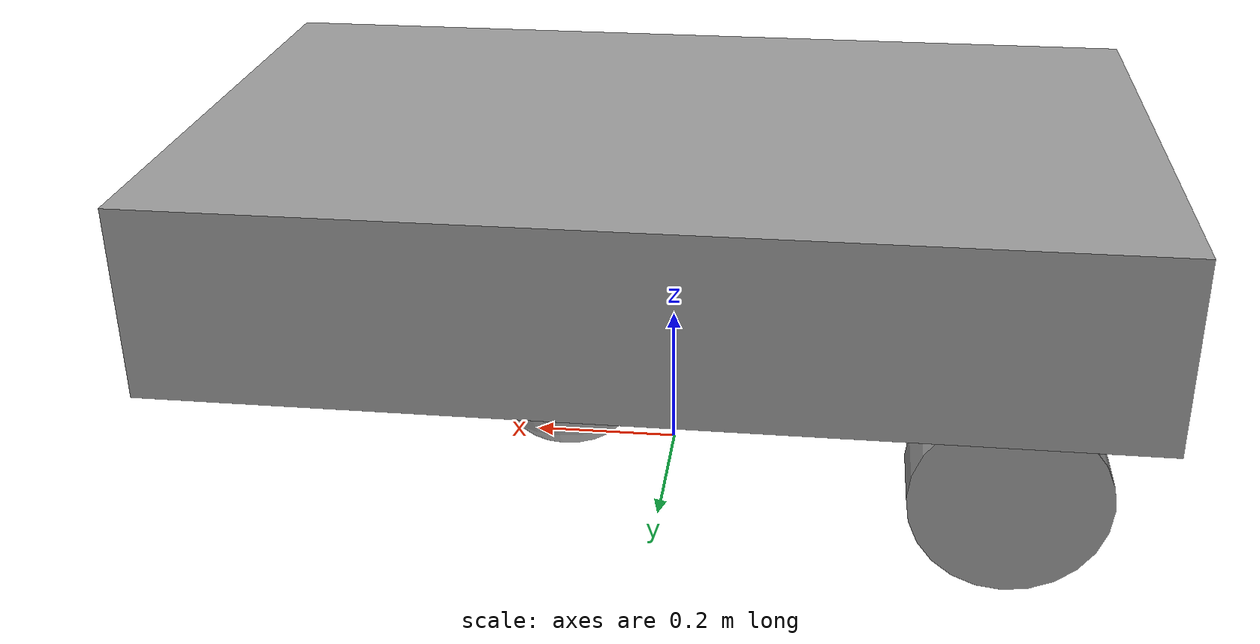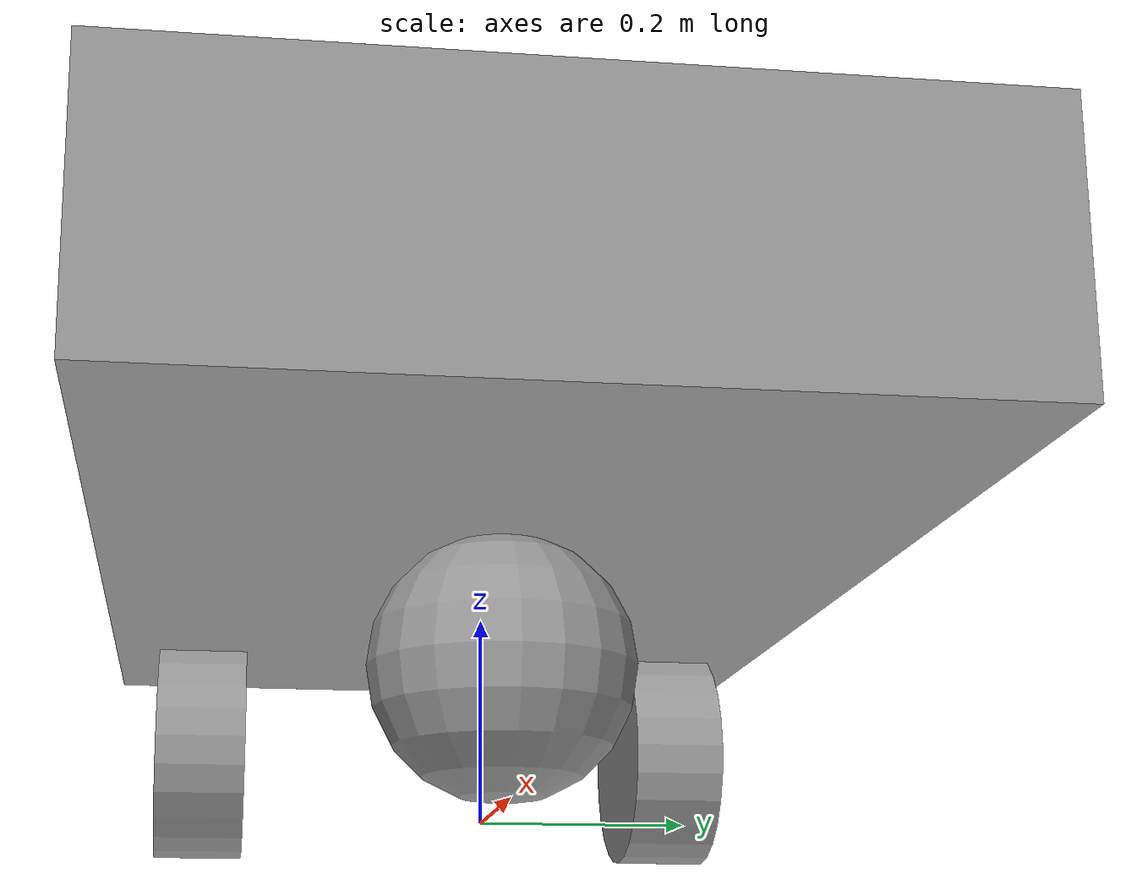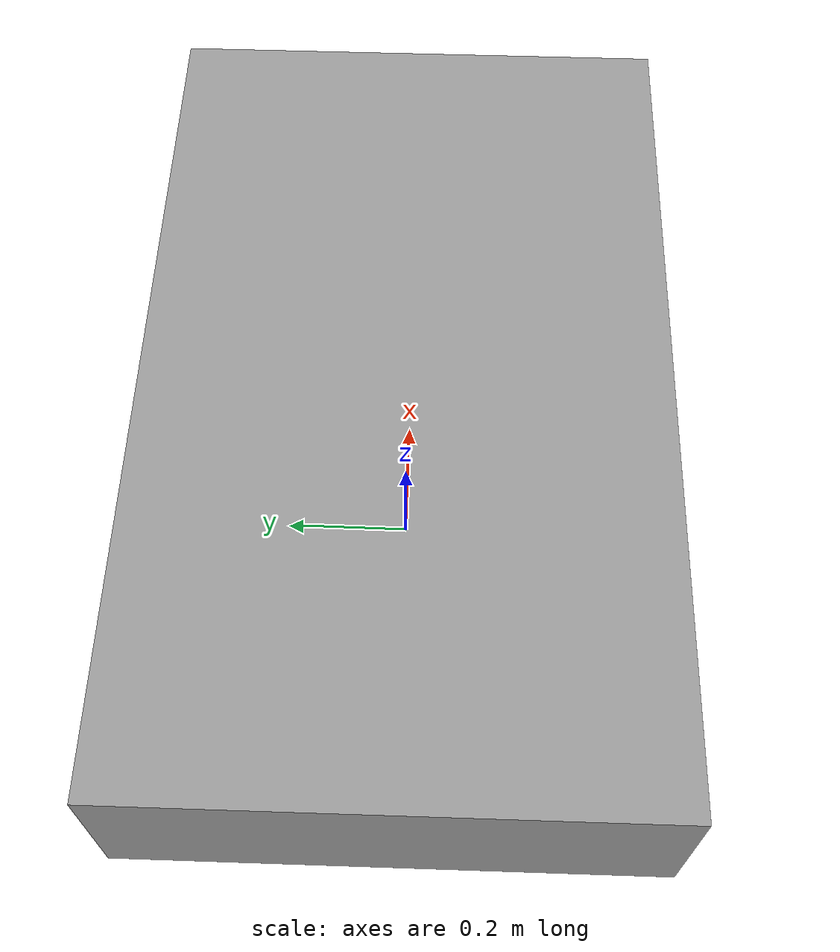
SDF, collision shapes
<?xml version='1.0'?>
<sdf version='1.7'>
  <model name='rasoc_robot2'>
    <!-- If true, physics engine will ignore -->
    <static>false</static>

    <!-- My RASOC Model -->
    <link name='free_front_wheel'>
      <inertial>
        <mass>0.1</mass>
        <inertia>
          <ixx>0.003125</ixx>
          <ixy>0</ixy>
          <ixz>0</ixz>
          <iyy>0.003125</iyy>
          <iyz>0</iyz>
          <izz>0.003125</izz>
        </inertia>
        <pose>0 0 0 0 0 0</pose>
      </inertial>
      <pose>0.15 0 0.25 0 0 0</pose>
      <gravity>1</gravity>
      <self_collide>0</self_collide>
      <kinematic>0</kinematic>
      <enable_wind>0</enable_wind>
      <visual name='visual'>
        <pose>0 0 -0.125 0 0 0</pose>
        <geometry>
          <sphere>
            <radius>0.125</radius>
          </sphere>
        </geometry>
        <material>
          <lighting>1</lighting>
          <script>
            <uri>file://media/materials/scripts/gazebo.material</uri>
            <name>Gazebo/Grey</name>
          </script>
          <shader type='pixel'>
            <normal_map>__default__</normal_map>
          </shader>
          <ambient>0.3 0.3 0.3 1</ambient>
          <diffuse>0.7 0.7 0.7 1</diffuse>
          <specular>0.01 0.01 0.01 1</specular>
          <emissive>0 0 0 1</emissive>
        </material>
        <transparency>1</transparency>
        <cast_shadows>1</cast_shadows>
      </visual>
      <collision name='collision'>
        <laser_retro>0</laser_retro>
        <max_contacts>10</max_contacts>
        <pose>0 0 -0.125 0 0 0</pose>
        <geometry>
          <sphere>
            <radius>0.125</radius>
          </sphere>
        </geometry>
        <surface>
          <friction>
            <ode>
              <mu>0.001</mu>
              <mu2>0.001</mu2>
              <fdir1>0 0 0</fdir1>
              <slip1>0</slip1>
              <slip2>0</slip2>
            </ode>
            <torsional>
              <coefficient>1</coefficient>
              <patch_radius>0</patch_radius>
              <surface_radius>0</surface_radius>
              <use_patch_radius>1</use_patch_radius>
              <ode>
                <slip>0</slip>
              </ode>
            </torsional>
          </friction>
          <bounce>
            <restitution_coefficient>0</restitution_coefficient>
            <threshold>1e+06</threshold>
          </bounce>
          <contact>
            <collide_without_contact>0</collide_without_contact>
            <collide_without_contact_bitmask>1</collide_without_contact_bitmask>
            <collide_bitmask>1</collide_bitmask>
            <ode>
              <soft_cfm>0</soft_cfm>
              <soft_erp>0.2</soft_erp>
              <kp>1e+13</kp>
              <kd>1</kd>
              <max_vel>0.01</max_vel>
              <min_depth>0</min_depth>
            </ode>
            <bullet>
              <split_impulse>1</split_impulse>
              <split_impulse_penetration_threshold>-0.01</split_impulse_penetration_threshold>
              <soft_cfm>0</soft_cfm>
              <soft_erp>0.2</soft_erp>
              <kp>1e+13</kp>
              <kd>1</kd>
            </bullet>
          </contact>
        </surface>
      </collision>
    </link>

    <link name='left_wheel'>
      <inertial>
        <mass>0.1</mass>
        <inertia>
          <ixx>0.0145833</ixx>
          <ixy>0</ixy>
          <ixz>0</ixz>
          <iyy>0.0145833</iyy>
          <iyz>0</iyz>
          <izz>0.0125</izz>
        </inertia>
        <pose>0 0 0 0 0 0</pose>
      </inertial>
      <pose>-0.445 0.275 0.29 1.5708 0 0</pose>
      <gravity>1</gravity>
      <self_collide>0</self_collide>
      <kinematic>0</kinematic>
      <enable_wind>0</enable_wind>
      <visual name='visual'>
        <pose>0 -0.16 0 0 0 0</pose>
        <geometry>
          <cylinder>
            <radius>0.125</radius>
            <length>0.1</length>
          </cylinder>
        </geometry>
        <material>
          <lighting>1</lighting>
          <script>
            <uri>file://media/materials/scripts/gazebo.material</uri>
            <name>Gazebo/Grey</name>
          </script>
          <shader type='pixel'>
            <normal_map>__default__</normal_map>
          </shader>
          <ambient>0.3 0.3 0.3 1</ambient>
          <diffuse>0.7 0.7 0.7 1</diffuse>
          <specular>0.01 0.01 0.01 1</specular>
          <emissive>0 0 0 1</emissive>
        </material>
        <transparency>1</transparency>
        <cast_shadows>1</cast_shadows>
      </visual>
      <collision name='collision'>
        <laser_retro>0</laser_retro>
        <max_contacts>10</max_contacts>
        <pose>0 -0.16 0 0 0 0</pose>
        <geometry>
          <cylinder>
            <radius>0.125</radius>
            <length>0.1</length>
          </cylinder>
        </geometry>
        <surface>
          <friction>
            <ode>
              <mu>1</mu>
              <mu2>1</mu2>
              <fdir1>0 0 0</fdir1>
              <slip1>0</slip1>
              <slip2>0</slip2>
            </ode>
            <torsional>
              <coefficient>1</coefficient>
              <patch_radius>0</patch_radius>
              <surface_radius>0</surface_radius>
              <use_patch_radius>1</use_patch_radius>
              <ode>
                <slip>0</slip>
              </ode>
            </torsional>
          </friction>
          <bounce>
            <restitution_coefficient>0</restitution_coefficient>
            <threshold>1e+06</threshold>
          </bounce>
          <contact>
            <collide_without_contact>0</collide_without_contact>
            <collide_without_contact_bitmask>1</collide_without_contact_bitmask>
            <collide_bitmask>1</collide_bitmask>
            <ode>
              <soft_cfm>0</soft_cfm>
              <soft_erp>0.2</soft_erp>
              <kp>1e+13</kp>
              <kd>1</kd>
              <max_vel>0.01</max_vel>
              <min_depth>0</min_depth>
            </ode>
            <bullet>
              <split_impulse>1</split_impulse>
              <split_impulse_penetration_threshold>-0.01</split_impulse_penetration_threshold>
              <soft_cfm>0</soft_cfm>
              <soft_erp>0.2</soft_erp>
              <kp>1e+13</kp>
              <kd>1</kd>
            </bullet>
          </contact>
        </surface>
      </collision>
    </link>

    <link name='right_wheel'>
      <inertial>
        <mass>0.1</mass>
        <inertia>
          <ixx>0.0145833</ixx>
          <ixy>0</ixy>
          <ixz>0</ixz>
          <iyy>0.0145833</iyy>
          <iyz>0</iyz>
          <izz>0.0125</izz>
        </inertia>
        <pose>0 0 0 0 0 0</pose>
      </inertial>
      <pose>-0.445 -0.275 0.29 1.5708 0 0</pose>
      <gravity>1</gravity>
      <self_collide>0</self_collide>
      <kinematic>0</kinematic>
      <enable_wind>0</enable_wind>
      <visual name='visual'>
        <pose>0 -0.16 0 0 0 0</pose>
        <geometry>
          <cylinder>
            <radius>0.125</radius>
            <length>0.1</length>
          </cylinder>
        </geometry>
        <material>
          <lighting>1</lighting>
          <script>
            <uri>file://media/materials/scripts/gazebo.material</uri>
            <name>Gazebo/Grey</name>
          </script>
          <shader type='pixel'>
            <normal_map>__default__</normal_map>
          </shader>
          <ambient>0.3 0.3 0.3 1</ambient>
          <diffuse>0.7 0.7 0.7 1</diffuse>
          <specular>0.01 0.01 0.01 1</specular>
          <emissive>0 0 0 1</emissive>
        </material>
        <transparency>1</transparency>
        <cast_shadows>1</cast_shadows>
      </visual>
      <collision name='collision'>
        <laser_retro>0</laser_retro>
        <max_contacts>10</max_contacts>
        <pose>0 -0.16 0 0 0 0</pose>
        <geometry>
          <cylinder>
            <radius>0.125</radius>
            <length>0.1</length>
          </cylinder>
        </geometry>
        <surface>
          <friction>
            <ode>
              <mu>1</mu>
              <mu2>1</mu2>
              <fdir1>0 0 0</fdir1>
              <slip1>0</slip1>
              <slip2>0</slip2>
            </ode>
            <torsional>
              <coefficient>1</coefficient>
              <patch_radius>0</patch_radius>
              <surface_radius>0</surface_radius>
              <use_patch_radius>1</use_patch_radius>
              <ode>
                <slip>0</slip>
              </ode>
            </torsional>
          </friction>
          <bounce>
            <restitution_coefficient>0</restitution_coefficient>
            <threshold>1e+06</threshold>
          </bounce>
          <contact>
            <collide_without_contact>0</collide_without_contact>
            <collide_without_contact_bitmask>1</collide_without_contact_bitmask>
            <collide_bitmask>1</collide_bitmask>
            <ode>
              <soft_cfm>0</soft_cfm>
              <soft_erp>0.2</soft_erp>
              <kp>1e+13</kp>
              <kd>1</kd>
              <max_vel>0.01</max_vel>
              <min_depth>0</min_depth>
            </ode>
            <bullet>
              <split_impulse>1</split_impulse>
              <split_impulse_penetration_threshold>-0.01</split_impulse_penetration_threshold>
              <soft_cfm>0</soft_cfm>
              <soft_erp>0.2</soft_erp>
              <kp>1e+13</kp>
              <kd>1</kd>
            </bullet>
          </contact>
        </surface>
      </collision>
    </link>

    <link name='body_robot'>
      <inertial>
        <mass>1</mass>
        <inertia>
          <ixx>0.166667</ixx>
          <ixy>0</ixy>
          <ixz>0</ixz>
          <iyy>0.166667</iyy>
          <iyz>0</iyz>
          <izz>0.166667</izz>
        </inertia>
        <pose>0 0 -0.3 0 0 0</pose>
      </inertial>
      <pose>0 0 0.365 0 0 0</pose>
      <gravity>1</gravity>
      <self_collide>0</self_collide>
      <kinematic>0</kinematic>
      <enable_wind>0</enable_wind>
      <visual name='visual'>
         <pose>0 0 0.12 0 0 0</pose>
        <geometry>
          <mesh>
            <uri>/home/maxx/Documents/robotOruga/robotOruga.stl</uri>
            <scale>0.001 0.001 0.001</scale>
          </mesh>
        </geometry>
        <material>
          <lighting>1</lighting>
          <script>
            <uri>file://media/materials/scripts/gazebo.material</uri>
            <name>Gazebo/Grey</name>
          </script>
          <shader type='pixel'>
            <normal_map>__default__</normal_map>
          </shader>
          <ambient>0.3 0.3 0.3 1</ambient>
          <diffuse>0.7 0.7 0.7 1</diffuse>
          <specular>0.01 0.01 0.01 1</specular>
          <emissive>0 0 0 1</emissive>
        </material>
        <transparency>0</transparency>
        <cast_shadows>1</cast_shadows>
      </visual>
      <collision name='collision'>
        <laser_retro>0</laser_retro>
        <max_contacts>10</max_contacts>
        <pose>0 0 0 0 0 0</pose>
        <geometry>
          <box>
            <size>1.25 0.75 0.25</size>
          </box>
        </geometry>
        <surface>
          <friction>
            <ode>
              <mu>1</mu>
              <mu2>1</mu2>
              <fdir1>0 0 0</fdir1>
              <slip1>0</slip1>
              <slip2>0</slip2>
            </ode>
            <torsional>
              <coefficient>1</coefficient>
              <patch_radius>0</patch_radius>
              <surface_radius>0</surface_radius>
              <use_patch_radius>1</use_patch_radius>
              <ode>
                <slip>0</slip>
              </ode>
            </torsional>
          </friction>
          <bounce>
            <restitution_coefficient>0</restitution_coefficient>
            <threshold>1e+06</threshold>
          </bounce>
          <contact>
            <collide_without_contact>0</collide_without_contact>
            <collide_without_contact_bitmask>1</collide_without_contact_bitmask>
            <collide_bitmask>1</collide_bitmask>
            <ode>
              <soft_cfm>0</soft_cfm>
              <soft_erp>0.2</soft_erp>
              <kp>1e+13</kp>
              <kd>1</kd>
              <max_vel>0.01</max_vel>
              <min_depth>0</min_depth>
            </ode>
            <bullet>
              <split_impulse>1</split_impulse>
              <split_impulse_penetration_threshold>-0.01</split_impulse_penetration_threshold>
              <soft_cfm>0</soft_cfm>
              <soft_erp>0.2</soft_erp>
              <kp>1e+13</kp>
              <kd>1</kd>
            </bullet>
          </contact>
        </surface>
      </collision>

      <!-- Lidar Sensor -->
      <sensor name="lidar" type="ray">
        <always_on>true</always_on>
        <visualize>true</visualize>
        <pose>0.315 0 0.415 0 0 0</pose>
        <update_rate>1000</update_rate>
        <ray>
          <scan>
            <horizontal>
               <samples>128</samples>
              <!-- -127grados a 127 grados con 2 grados de paso -->
              <min_angle>-2.21658</min_angle>
              <max_angle>2.21658</max_angle>
            </horizontal>
          </scan>
          <range>
            <min>0.06</min>
            <max>3</max>
            <resolution>0.15000</resolution>
          </range>
          <noise>
            <type>gaussian</type>
            <mean>0.0</mean>
            <stddev>0.01</stddev>
          </noise>
        </ray>
        <plugin name="lidar" filename="libgazebo_ros_ray_sensor.so">
          <ros>
            <namespace>/demo</namespace>
            <argument>--ros-args --remap ~/out:=scan</argument>
          </ros>
          <output_type>sensor_msgs/LaserScan</output_type>
        </plugin>
      </sensor>

      <!-- GPS Sensor -->
      <sensor name="my_gps" type="gps">
          <always_on>true</always_on>
          <update_rate>20</update_rate>
          <gps>
            <position_sensing>
              <horizontal>
                <noise type="gaussian">
                  <mean>0.0</mean>
                  <stddev>2e-4</stddev>
                </noise>
              </horizontal>
              <vertical>
                <noise type="gaussian">
                  <mean>0.0</mean>
                  <stddev>2e-4</stddev>
                </noise>
              </vertical>
            </position_sensing>
          </gps>
          <plugin name="rasoc_gps" filename="libgazebo_ros_gps_sensor.so">
            <ros>
              <namespace>/gps_rasoc</namespace>
              <remapping>~/out:=pos</remapping>
            </ros>
            <frame_name>body_robot</frame_name>
          </plugin>
        </sensor>

        <!-- IMU Sensor -->
        <sensor name="rasoc_imu" type="imu">
        <always_on>true</always_on>
        <update_rate>100</update_rate>
        <imu>
          <angular_velocity>
            <x>
              <noise type="gaussian">
                <mean>0.0</mean>
                <stddev>2e-4</stddev>
              </noise>
            </x>
            <y>
              <noise type="gaussian">
                <mean>0.0</mean>
                <stddev>2e-4</stddev>
              </noise>
            </y>
            <z>
              <noise type="gaussian">
                <mean>0.0</mean>
                <stddev>2e-4</stddev>
              </noise>
            </z>
          </angular_velocity>
          <linear_acceleration>
            <x>
              <noise type="gaussian">
                <mean>0.0</mean>
                <stddev>1.7e-2</stddev>
              </noise>
            </x>
            <y>
              <noise type="gaussian">
                <mean>0.0</mean>
                <stddev>1.7e-2</stddev>
              </noise>
            </y>
            <z>
              <noise type="gaussian">
                <mean>0.0</mean>
                <stddev>1.7e-2</stddev>
              </noise>
            </z>
          </linear_acceleration>
        </imu>
        <plugin name="rasocRobot_imu" filename="libgazebo_ros_imu_sensor.so">
          <ros>
            <remapping>~/out:=imu</remapping>
          </ros>
          <body_name>rasoc_imu</body_name>
        </plugin>
      </sensor>
    </link>

    <joint name='front_joint' type='fixed'>
      <parent>body_robot</parent>
      <child>free_front_wheel</child>
      <pose>0 0 0.15 0 0 0</pose>
      <physics>
        <ode>
          <limit>
            <cfm>0</cfm>
            <erp>0.2</erp>
          </limit>
          <suspension>
            <cfm>0</cfm>
            <erp>0.2</erp>
          </suspension>
        </ode>
      </physics>
    </joint>
    <joint name='left_joint' type='revolute'>
      <parent>body_robot</parent>
      <child>left_wheel</child>
      <pose>0 -0.16 0 0 0 0</pose>
      <axis>
        <xyz>0 0 -1</xyz>
        <limit>
          <lower>-1.79769e+308</lower>
          <upper>1.79769e+308</upper>
          <effort>-1</effort>
          <velocity>-1</velocity>
        </limit>
        <dynamics>
          <spring_reference>0</spring_reference>
          <spring_stiffness>0</spring_stiffness>
          <damping>0</damping>
          <friction>0</friction>
        </dynamics>
      </axis>
      <physics>
        <ode>
          <limit>
            <cfm>0</cfm>
            <erp>0.2</erp>
          </limit>
          <suspension>
            <cfm>0</cfm>
            <erp>0.2</erp>
          </suspension>
        </ode>
      </physics>
    </joint>
    <joint name='right_joint' type='revolute'>
      <parent>body_robot</parent>
      <child>right_wheel</child>
      <pose>0 -0.16 0 0 0 0</pose>
      <axis>
        <xyz>0 0 -1</xyz>
        <limit>
          <lower>-1.79769e+308</lower>
          <upper>1.79769e+308</upper>
          <effort>-1</effort>
          <velocity>-1</velocity>
        </limit>
        <dynamics>
          <spring_reference>0</spring_reference>
          <spring_stiffness>0</spring_stiffness>
          <damping>0</damping>
          <friction>0</friction>
        </dynamics>
      </axis>
      <physics>
        <ode>
          <limit>
            <cfm>0</cfm>
            <erp>0.2</erp>
          </limit>
          <suspension>
            <cfm>0</cfm>
            <erp>0.2</erp>
          </suspension>
        </ode>
      </physics>
    </joint>
    <static>0</static>
    <allow_auto_disable>1</allow_auto_disable>

    <plugin filename="libgazebo_ros_diff_drive.so" name="diff_drive">
      <update_rate>10000</update_rate>
      <ros>
        <namespace>/demo</namespace>
        <remapping>cmd_vel:=cmd_vel</remapping>
        <remapping>odom:=odom</remapping>
      </ros>
      <left_joint>left_joint</left_joint>
      <right_joint>right_joint</right_joint>
      <wheel_separation>0.55</wheel_separation>
      <wheel_diameter>0.25</wheel_diameter>
      <!-- Output -->
      <publish_odom>true</publish_odom>
      <publish_odom_tf>true</publish_odom_tf>
      <publish_wheel_tf>true</publish_wheel_tf>

      <odometry_frame>odom</odometry_frame>
      <robot_base_frame>body_robot</robot_base_frame>
    </plugin>

  </model>
</sdf>
